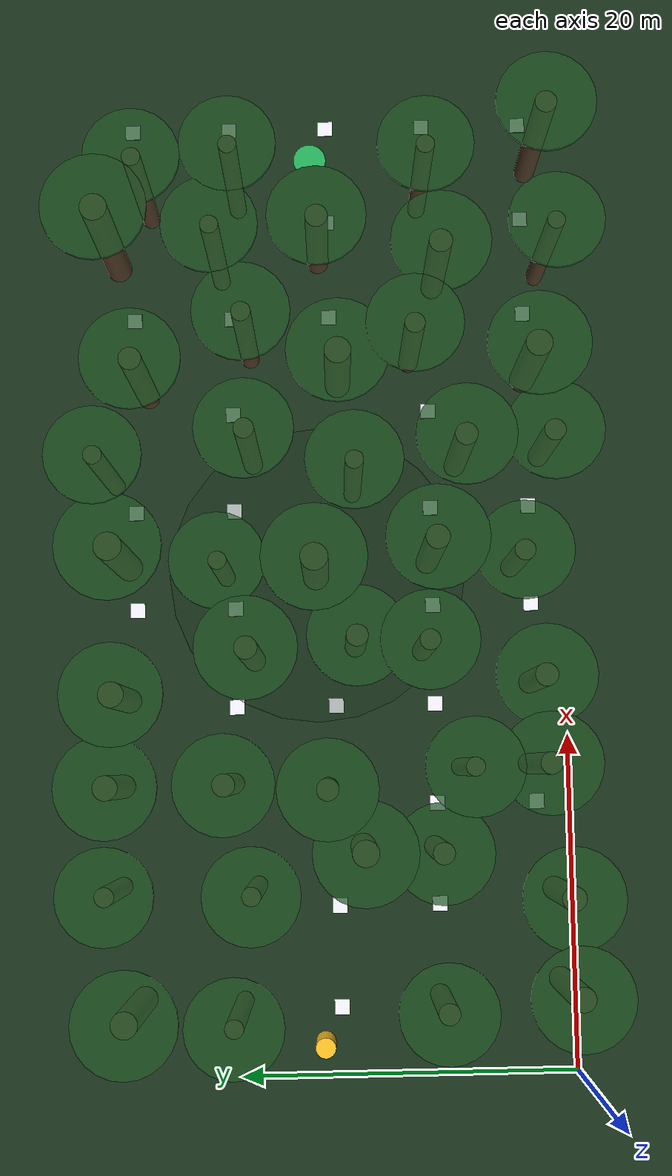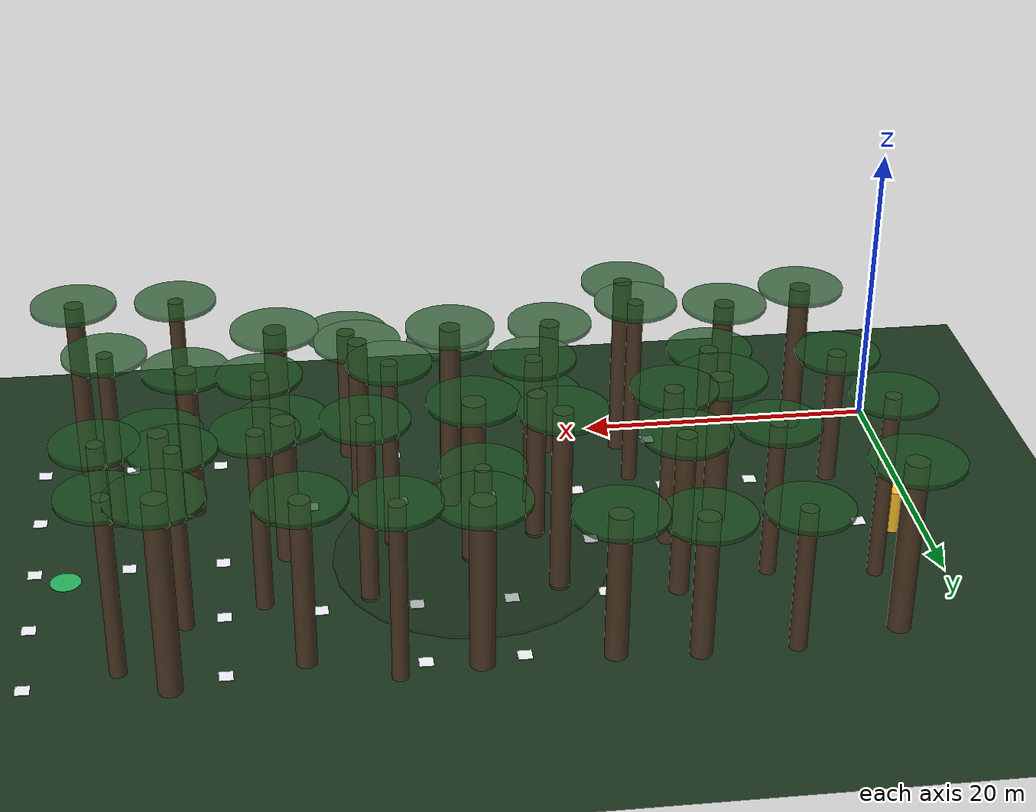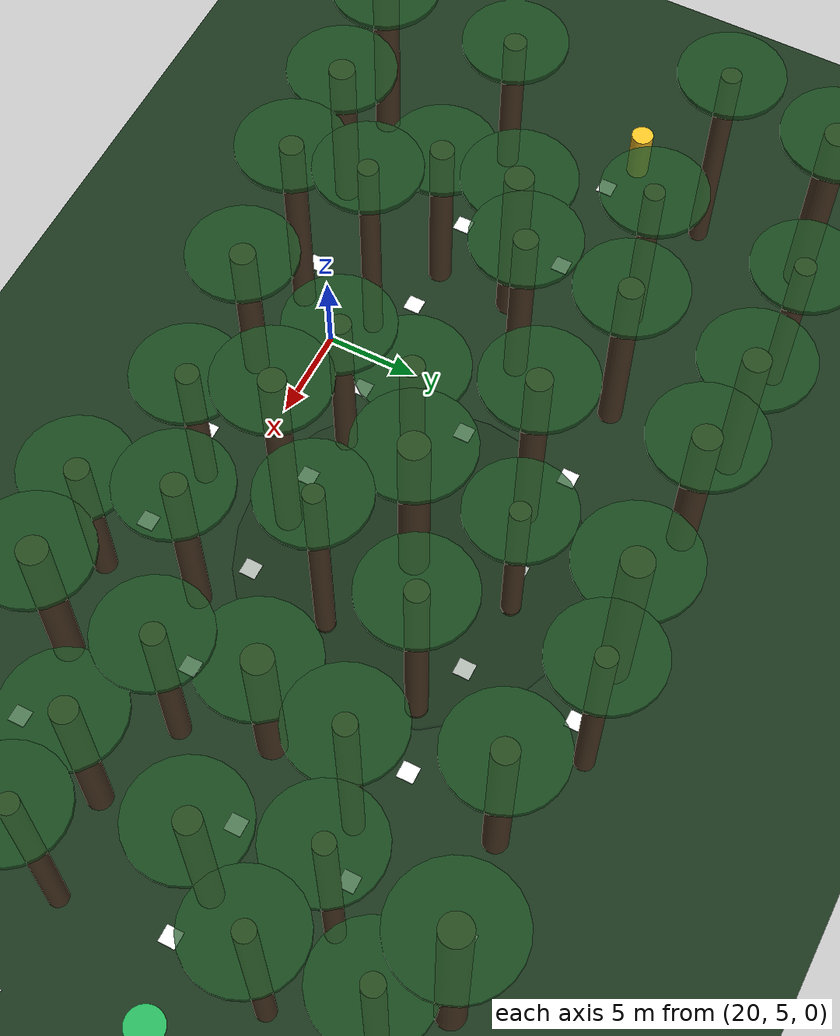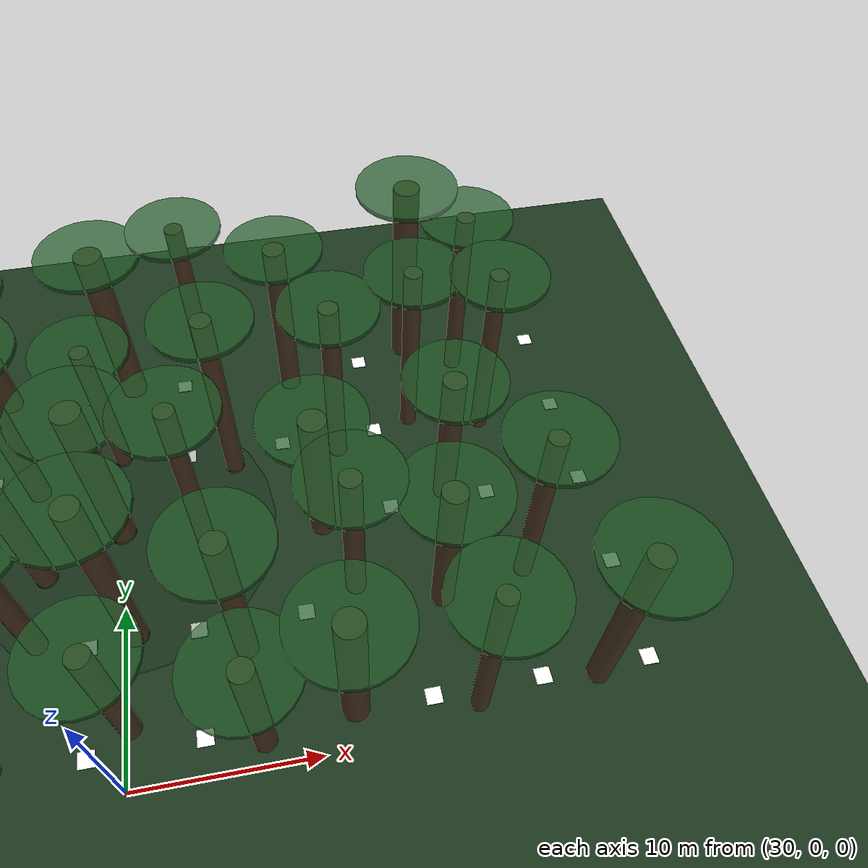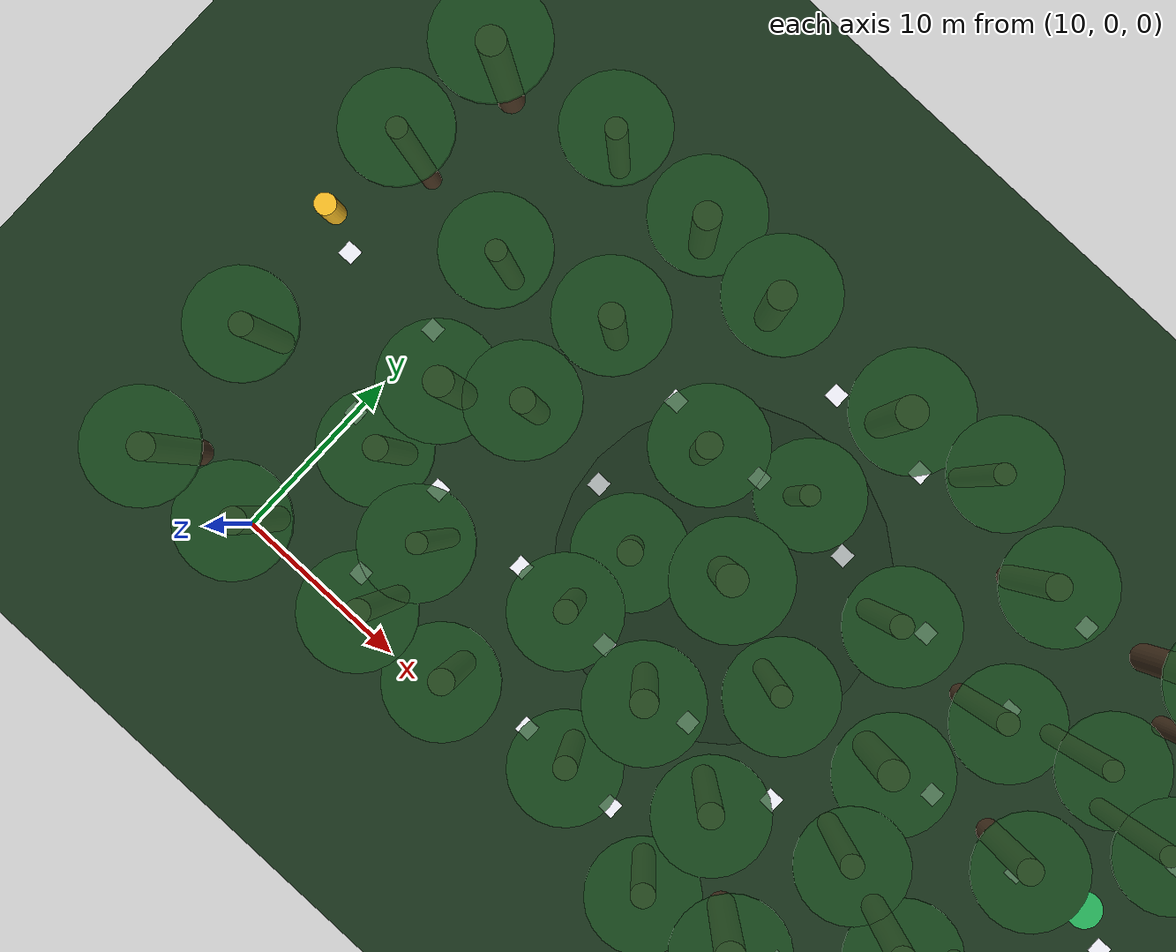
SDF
<?xml version="1.0" ?>
<!-- GENERATED by tools/gen_maps.py -- do not edit by hand. -->
<sdf version="1.6">
  <world name="canopy">
    <gravity>0 0 -9.81</gravity>
    <scene><ambient>0.5 0.52 0.55 1</ambient><background>0.45 0.55 0.5 1</background><shadows>true</shadows>
      <fog><color>0.45 0.55 0.5 1</color><type>linear</type><start>16</start><end>90</end><density>0.035</density></fog></scene>
    <light name="sun" type="directional"><cast_shadows>true</cast_shadows><pose>0 0 40 0 0 0</pose>
      <diffuse>0.9 0.9 0.9 1</diffuse><specular>0.2 0.2 0.2 1</specular><direction>-0.4 0.3 -0.9</direction></light>
    <model name="ground"><static>true</static><link name="link">
      <collision name="c"><geometry><plane><normal>0 0 1</normal><size>400 400</size></plane></geometry></collision>
      <visual name="v"><geometry><plane><normal>0 0 1</normal><size>400 400</size></plane></geometry>
      <material><ambient>0.1 0.2 0.11</ambient><diffuse>0.1 0.2 0.11</diffuse></material></visual></link></model>
    <model name="gps_black"><static>true</static><pose>30.000 15.000 0.03 0 0 0</pose><link name="l"><visual name="v"><geometry><cylinder><radius>9.0</radius><length>0.3</length></cylinder></geometry><material><ambient>0.1 0.18 0.1 0.3</ambient><diffuse>0.1 0.18 0.1 0.3</diffuse></material></visual></link></model>
    <model name="trunk0"><static>true</static><pose>5.436 0.883 5.477 0 0 0</pose><link name="l"><collision name="c"><geometry><cylinder><radius>0.6952803419119562</radius><length>10.954439688138283</length></cylinder></geometry></collision><visual name="v"><geometry><cylinder><radius>0.6952803419119562</radius><length>10.954439688138283</length></cylinder></geometry><material><ambient>0.3 0.22 0.14 1</ambient><diffuse>0.3 0.22 0.14 1</diffuse></material></visual></link></model>
    <model name="canopy0"><static>true</static><pose>5.436 0.883 10.95 0 0 0</pose><link name="l"><visual name="v"><geometry><cylinder><radius>2.895280341911956</radius><length>0.3</length></cylinder></geometry><material><ambient>0.13 0.34 0.15 0.75</ambient><diffuse>0.13 0.34 0.15 0.75</diffuse></material></visual></link></model>
    <model name="trunk1"><static>true</static><pose>4.632 8.115 4.801 0 0 0</pose><link name="l"><collision name="c"><geometry><cylinder><radius>0.6097066750737756</radius><length>9.602003546664584</length></cylinder></geometry></collision><visual name="v"><geometry><cylinder><radius>0.6097066750737756</radius><length>9.602003546664584</length></cylinder></geometry><material><ambient>0.3 0.22 0.14 1</ambient><diffuse>0.3 0.22 0.14 1</diffuse></material></visual></link></model>
    <model name="canopy1"><static>true</static><pose>4.632 8.115 9.60 0 0 0</pose><link name="l"><visual name="v"><geometry><cylinder><radius>2.809706675073776</radius><length>0.3</length></cylinder></geometry><material><ambient>0.13 0.34 0.15 0.75</ambient><diffuse>0.13 0.34 0.15 0.75</diffuse></material></visual></link></model>
    <model name="trunk2"><static>true</static><pose>4.520 19.788 6.499 0 0 0</pose><link name="l"><collision name="c"><geometry><cylinder><radius>0.5209566270723857</radius><length>12.997329509495279</length></cylinder></geometry></collision><visual name="v"><geometry><cylinder><radius>0.5209566270723857</radius><length>12.997329509495279</length></cylinder></geometry><material><ambient>0.3 0.22 0.14 1</ambient><diffuse>0.3 0.22 0.14 1</diffuse></material></visual></link></model>
    <model name="canopy2"><static>true</static><pose>4.520 19.788 13.00 0 0 0</pose><link name="l"><visual name="v"><geometry><cylinder><radius>2.7209566270723857</radius><length>0.3</length></cylinder></geometry><material><ambient>0.13 0.34 0.15 0.75</ambient><diffuse>0.13 0.34 0.15 0.75</diffuse></material></visual></link></model>
    <model name="trunk3"><static>true</static><pose>4.690 25.758 5.978 0 0 0</pose><link name="l"><collision name="c"><geometry><cylinder><radius>0.7480556374016114</radius><length>11.956275951153915</length></cylinder></geometry></collision><visual name="v"><geometry><cylinder><radius>0.7480556374016114</radius><length>11.956275951153915</length></cylinder></geometry><material><ambient>0.3 0.22 0.14 1</ambient><diffuse>0.3 0.22 0.14 1</diffuse></material></visual></link></model>
    <model name="canopy3"><static>true</static><pose>4.690 25.758 11.96 0 0 0</pose><link name="l"><visual name="v"><geometry><cylinder><radius>2.9480556374016116</radius><length>0.3</length></cylinder></geometry><material><ambient>0.13 0.34 0.15 0.75</ambient><diffuse>0.13 0.34 0.15 0.75</diffuse></material></visual></link></model>
    <model name="trunk4"><static>true</static><pose>10.796 1.114 5.047 0 0 0</pose><link name="l"><collision name="c"><geometry><cylinder><radius>0.6882299667216768</radius><length>10.094201941323565</length></cylinder></geometry></collision><visual name="v"><geometry><cylinder><radius>0.6882299667216768</radius><length>10.094201941323565</length></cylinder></geometry><material><ambient>0.3 0.22 0.14 1</ambient><diffuse>0.3 0.22 0.14 1</diffuse></material></visual></link></model>
    <model name="canopy4"><static>true</static><pose>10.796 1.114 10.09 0 0 0</pose><link name="l"><visual name="v"><geometry><cylinder><radius>2.888229966721677</radius><length>0.3</length></cylinder></geometry><material><ambient>0.13 0.34 0.15 0.75</ambient><diffuse>0.13 0.34 0.15 0.75</diffuse></material></visual></link></model>
    <model name="trunk5"><static>true</static><pose>13.433 8.247 5.255 0 0 0</pose><link name="l"><collision name="c"><geometry><cylinder><radius>0.619004142395234</radius><length>10.509031026228309</length></cylinder></geometry></collision><visual name="v"><geometry><cylinder><radius>0.619004142395234</radius><length>10.509031026228309</length></cylinder></geometry><material><ambient>0.3 0.22 0.14 1</ambient><diffuse>0.3 0.22 0.14 1</diffuse></material></visual></link></model>
    <model name="canopy5"><static>true</static><pose>13.433 8.247 10.51 0 0 0</pose><link name="l"><visual name="v"><geometry><cylinder><radius>2.8190041423952343</radius><length>0.3</length></cylinder></geometry><material><ambient>0.13 0.34 0.15 0.75</ambient><diffuse>0.13 0.34 0.15 0.75</diffuse></material></visual></link></model>
    <model name="trunk6"><static>true</static><pose>13.524 12.549 5.445 0 0 0</pose><link name="l"><collision name="c"><geometry><cylinder><radius>0.7575405377146038</radius><length>10.889558184214806</length></cylinder></geometry></collision><visual name="v"><geometry><cylinder><radius>0.7575405377146038</radius><length>10.889558184214806</length></cylinder></geometry><material><ambient>0.3 0.22 0.14 1</ambient><diffuse>0.3 0.22 0.14 1</diffuse></material></visual></link></model>
    <model name="canopy6"><static>true</static><pose>13.524 12.549 10.89 0 0 0</pose><link name="l"><visual name="v"><geometry><cylinder><radius>2.9575405377146042</radius><length>0.3</length></cylinder></geometry><material><ambient>0.13 0.34 0.15 0.75</ambient><diffuse>0.13 0.34 0.15 0.75</diffuse></material></visual></link></model>
    <model name="trunk7"><static>true</static><pose>11.327 18.862 5.478 0 0 0</pose><link name="l"><collision name="c"><geometry><cylinder><radius>0.5353376714235105</radius><length>10.95665375811313</length></cylinder></geometry></collision><visual name="v"><geometry><cylinder><radius>0.5353376714235105</radius><length>10.95665375811313</length></cylinder></geometry><material><ambient>0.3 0.22 0.14 1</ambient><diffuse>0.3 0.22 0.14 1</diffuse></material></visual></link></model>
    <model name="canopy7"><static>true</static><pose>11.327 18.862 10.96 0 0 0</pose><link name="l"><visual name="v"><geometry><cylinder><radius>2.735337671423511</radius><length>0.3</length></cylinder></geometry><material><ambient>0.13 0.34 0.15 0.75</ambient><diffuse>0.13 0.34 0.15 0.75</diffuse></material></visual></link></model>
    <model name="trunk8"><static>true</static><pose>11.387 27.012 4.996 0 0 0</pose><link name="l"><collision name="c"><geometry><cylinder><radius>0.5542179139771812</radius><length>9.99136892304878</length></cylinder></geometry></collision><visual name="v"><geometry><cylinder><radius>0.5542179139771812</radius><length>9.99136892304878</length></cylinder></geometry><material><ambient>0.3 0.22 0.14 1</ambient><diffuse>0.3 0.22 0.14 1</diffuse></material></visual></link></model>
    <model name="canopy8"><static>true</static><pose>11.387 27.012 9.99 0 0 0</pose><link name="l"><visual name="v"><geometry><cylinder><radius>2.7542179139771816</radius><length>0.3</length></cylinder></geometry><material><ambient>0.13 0.34 0.15 0.75</ambient><diffuse>0.13 0.34 0.15 0.75</diffuse></material></visual></link></model>
    <model name="trunk9"><static>true</static><pose>18.261 2.445 6.448 0 0 0</pose><link name="l"><collision name="c"><geometry><cylinder><radius>0.6117192628177194</radius><length>12.89574770593846</length></cylinder></geometry></collision><visual name="v"><geometry><cylinder><radius>0.6117192628177194</radius><length>12.89574770593846</length></cylinder></geometry><material><ambient>0.3 0.22 0.14 1</ambient><diffuse>0.3 0.22 0.14 1</diffuse></material></visual></link></model>
    <model name="canopy9"><static>true</static><pose>18.261 2.445 12.90 0 0 0</pose><link name="l"><visual name="v"><geometry><cylinder><radius>2.8117192628177197</radius><length>0.3</length></cylinder></geometry><material><ambient>0.13 0.34 0.15 0.75</ambient><diffuse>0.13 0.34 0.15 0.75</diffuse></material></visual></link></model>
    <model name="trunk10"><static>true</static><pose>18.153 6.601 6.736 0 0 0</pose><link name="l"><collision name="c"><geometry><cylinder><radius>0.5178803509898698</radius><length>13.472410886818857</length></cylinder></geometry></collision><visual name="v"><geometry><cylinder><radius>0.5178803509898698</radius><length>13.472410886818857</length></cylinder></geometry><material><ambient>0.3 0.22 0.14 1</ambient><diffuse>0.3 0.22 0.14 1</diffuse></material></visual></link></model>
    <model name="canopy10"><static>true</static><pose>18.153 6.601 13.47 0 0 0</pose><link name="l"><visual name="v"><geometry><cylinder><radius>2.71788035098987</radius><length>0.3</length></cylinder></geometry><material><ambient>0.13 0.34 0.15 0.75</ambient><diffuse>0.13 0.34 0.15 0.75</diffuse></material></visual></link></model>
    <model name="trunk11"><static>true</static><pose>17.059 14.577 5.682 0 0 0</pose><link name="l"><collision name="c"><geometry><cylinder><radius>0.6282776917008208</radius><length>11.363957836639734</length></cylinder></geometry></collision><visual name="v"><geometry><cylinder><radius>0.6282776917008208</radius><length>11.363957836639734</length></cylinder></geometry><material><ambient>0.3 0.22 0.14 1</ambient><diffuse>0.3 0.22 0.14 1</diffuse></material></visual></link></model>
    <model name="canopy11"><static>true</static><pose>17.059 14.577 11.36 0 0 0</pose><link name="l"><visual name="v"><geometry><cylinder><radius>2.828277691700821</radius><length>0.3</length></cylinder></geometry><material><ambient>0.13 0.34 0.15 0.75</ambient><diffuse>0.13 0.34 0.15 0.75</diffuse></material></visual></link></model>
    <model name="trunk12"><static>true</static><pose>17.405 20.274 5.718 0 0 0</pose><link name="l"><collision name="c"><geometry><cylinder><radius>0.6359553129112326</radius><length>11.435338625665079</length></cylinder></geometry></collision><visual name="v"><geometry><cylinder><radius>0.6359553129112326</radius><length>11.435338625665079</length></cylinder></geometry><material><ambient>0.3 0.22 0.14 1</ambient><diffuse>0.3 0.22 0.14 1</diffuse></material></visual></link></model>
    <model name="canopy12"><static>true</static><pose>17.405 20.274 11.44 0 0 0</pose><link name="l"><visual name="v"><geometry><cylinder><radius>2.8359553129112327</radius><length>0.3</length></cylinder></geometry><material><ambient>0.13 0.34 0.15 0.75</ambient><diffuse>0.13 0.34 0.15 0.75</diffuse></material></visual></link></model>
    <model name="trunk13"><static>true</static><pose>17.359 26.942 4.922 0 0 0</pose><link name="l"><collision name="c"><geometry><cylinder><radius>0.7096983301188714</radius><length>9.843538646224662</length></cylinder></geometry></collision><visual name="v"><geometry><cylinder><radius>0.7096983301188714</radius><length>9.843538646224662</length></cylinder></geometry><material><ambient>0.3 0.22 0.14 1</ambient><diffuse>0.3 0.22 0.14 1</diffuse></material></visual></link></model>
    <model name="canopy13"><static>true</static><pose>17.359 26.942 9.84 0 0 0</pose><link name="l"><visual name="v"><geometry><cylinder><radius>2.9096983301188715</radius><length>0.3</length></cylinder></geometry><material><ambient>0.13 0.34 0.15 0.75</ambient><diffuse>0.13 0.34 0.15 0.75</diffuse></material></visual></link></model>
    <model name="trunk14"><static>true</static><pose>23.181 2.238 4.954 0 0 0</pose><link name="l"><collision name="c"><geometry><cylinder><radius>0.6575589511434354</radius><length>9.908750466992673</length></cylinder></geometry></collision><visual name="v"><geometry><cylinder><radius>0.6575589511434354</radius><length>9.908750466992673</length></cylinder></geometry><material><ambient>0.3 0.22 0.14 1</ambient><diffuse>0.3 0.22 0.14 1</diffuse></material></visual></link></model>
    <model name="canopy14"><static>true</static><pose>23.181 2.238 9.91 0 0 0</pose><link name="l"><visual name="v"><geometry><cylinder><radius>2.8575589511434356</radius><length>0.3</length></cylinder></geometry><material><ambient>0.13 0.34 0.15 0.75</ambient><diffuse>0.13 0.34 0.15 0.75</diffuse></material></visual></link></model>
    <model name="trunk15"><static>true</static><pose>25.200 8.734 5.435 0 0 0</pose><link name="l"><collision name="c"><geometry><cylinder><radius>0.586381329467056</radius><length>10.870543352972007</length></cylinder></geometry></collision><visual name="v"><geometry><cylinder><radius>0.586381329467056</radius><length>10.870543352972007</length></cylinder></geometry><material><ambient>0.3 0.22 0.14 1</ambient><diffuse>0.3 0.22 0.14 1</diffuse></material></visual></link></model>
    <model name="canopy15"><static>true</static><pose>25.200 8.734 10.87 0 0 0</pose><link name="l"><visual name="v"><geometry><cylinder><radius>2.7863813294670563</radius><length>0.3</length></cylinder></geometry><material><ambient>0.13 0.34 0.15 0.75</ambient><diffuse>0.13 0.34 0.15 0.75</diffuse></material></visual></link></model>
    <model name="trunk16"><static>true</static><pose>25.537 12.778 5.280 0 0 0</pose><link name="l"><collision name="c"><geometry><cylinder><radius>0.6254368465355682</radius><length>10.559027566868721</length></cylinder></geometry></collision><visual name="v"><geometry><cylinder><radius>0.6254368465355682</radius><length>10.559027566868721</length></cylinder></geometry><material><ambient>0.3 0.22 0.14 1</ambient><diffuse>0.3 0.22 0.14 1</diffuse></material></visual></link></model>
    <model name="canopy16"><static>true</static><pose>25.537 12.778 10.56 0 0 0</pose><link name="l"><visual name="v"><geometry><cylinder><radius>2.8254368465355686</radius><length>0.3</length></cylinder></geometry><material><ambient>0.13 0.34 0.15 0.75</ambient><diffuse>0.13 0.34 0.15 0.75</diffuse></material></visual></link></model>
    <model name="trunk17"><static>true</static><pose>24.823 18.886 6.408 0 0 0</pose><link name="l"><collision name="c"><geometry><cylinder><radius>0.6466889301427416</radius><length>12.815421512486243</length></cylinder></geometry></collision><visual name="v"><geometry><cylinder><radius>0.6466889301427416</radius><length>12.815421512486243</length></cylinder></geometry><material><ambient>0.3 0.22 0.14 1</ambient><diffuse>0.3 0.22 0.14 1</diffuse></material></visual></link></model>
    <model name="canopy17"><static>true</static><pose>24.823 18.886 12.82 0 0 0</pose><link name="l"><visual name="v"><geometry><cylinder><radius>2.846688930142742</radius><length>0.3</length></cylinder></geometry><material><ambient>0.13 0.34 0.15 0.75</ambient><diffuse>0.13 0.34 0.15 0.75</diffuse></material></visual></link></model>
    <model name="trunk18"><static>true</static><pose>22.525 26.538 5.073 0 0 0</pose><link name="l"><collision name="c"><geometry><cylinder><radius>0.729371259863844</radius><length>10.145754442105726</length></cylinder></geometry></collision><visual name="v"><geometry><cylinder><radius>0.729371259863844</radius><length>10.145754442105726</length></cylinder></geometry><material><ambient>0.3 0.22 0.14 1</ambient><diffuse>0.3 0.22 0.14 1</diffuse></material></visual></link></model>
    <model name="canopy18"><static>true</static><pose>22.525 26.538 10.15 0 0 0</pose><link name="l"><visual name="v"><geometry><cylinder><radius>2.929371259863844</radius><length>0.3</length></cylinder></geometry><material><ambient>0.13 0.34 0.15 0.75</ambient><diffuse>0.13 0.34 0.15 0.75</diffuse></material></visual></link></model>
    <model name="trunk19"><static>true</static><pose>30.234 3.202 4.796 0 0 0</pose><link name="l"><collision name="c"><geometry><cylinder><radius>0.594124253854429</radius><length>9.592382884180992</length></cylinder></geometry></collision><visual name="v"><geometry><cylinder><radius>0.594124253854429</radius><length>9.592382884180992</length></cylinder></geometry><material><ambient>0.3 0.22 0.14 1</ambient><diffuse>0.3 0.22 0.14 1</diffuse></material></visual></link></model>
    <model name="canopy19"><static>true</static><pose>30.234 3.202 9.59 0 0 0</pose><link name="l"><visual name="v"><geometry><cylinder><radius>2.794124253854429</radius><length>0.3</length></cylinder></geometry><material><ambient>0.13 0.34 0.15 0.75</ambient><diffuse>0.13 0.34 0.15 0.75</diffuse></material></visual></link></model>
    <model name="trunk20"><static>true</static><pose>30.625 8.302 6.652 0 0 0</pose><link name="l"><collision name="c"><geometry><cylinder><radius>0.6739685612847477</radius><length>13.303942291498808</length></cylinder></geometry></collision><visual name="v"><geometry><cylinder><radius>0.6739685612847477</radius><length>13.303942291498808</length></cylinder></geometry><material><ambient>0.3 0.22 0.14 1</ambient><diffuse>0.3 0.22 0.14 1</diffuse></material></visual></link></model>
    <model name="canopy20"><static>true</static><pose>30.625 8.302 13.30 0 0 0</pose><link name="l"><visual name="v"><geometry><cylinder><radius>2.873968561284748</radius><length>0.3</length></cylinder></geometry><material><ambient>0.13 0.34 0.15 0.75</ambient><diffuse>0.13 0.34 0.15 0.75</diffuse></material></visual></link></model>
    <model name="trunk21"><static>true</static><pose>29.860 15.088 5.807 0 0 0</pose><link name="l"><collision name="c"><geometry><cylinder><radius>0.7834043285323813</radius><length>11.613029580168499</length></cylinder></geometry></collision><visual name="v"><geometry><cylinder><radius>0.7834043285323813</radius><length>11.613029580168499</length></cylinder></geometry><material><ambient>0.3 0.22 0.14 1</ambient><diffuse>0.3 0.22 0.14 1</diffuse></material></visual></link></model>
    <model name="canopy21"><static>true</static><pose>29.860 15.088 11.61 0 0 0</pose><link name="l"><visual name="v"><geometry><cylinder><radius>2.9834043285323815</radius><length>0.3</length></cylinder></geometry><material><ambient>0.13 0.34 0.15 0.75</ambient><diffuse>0.13 0.34 0.15 0.75</diffuse></material></visual></link></model>
    <model name="trunk22"><static>true</static><pose>29.917 20.525 5.043 0 0 0</pose><link name="l"><collision name="c"><geometry><cylinder><radius>0.5182008282791659</radius><length>10.086410155596363</length></cylinder></geometry></collision><visual name="v"><geometry><cylinder><radius>0.5182008282791659</radius><length>10.086410155596363</length></cylinder></geometry><material><ambient>0.3 0.22 0.14 1</ambient><diffuse>0.3 0.22 0.14 1</diffuse></material></visual></link></model>
    <model name="canopy22"><static>true</static><pose>29.917 20.525 10.09 0 0 0</pose><link name="l"><visual name="v"><geometry><cylinder><radius>2.718200828279166</radius><length>0.3</length></cylinder></geometry><material><ambient>0.13 0.34 0.15 0.75</ambient><diffuse>0.13 0.34 0.15 0.75</diffuse></material></visual></link></model>
    <model name="trunk23"><static>true</static><pose>30.645 26.471 5.836 0 0 0</pose><link name="l"><collision name="c"><geometry><cylinder><radius>0.7979287818399903</radius><length>11.672689703528457</length></cylinder></geometry></collision><visual name="v"><geometry><cylinder><radius>0.7979287818399903</radius><length>11.672689703528457</length></cylinder></geometry><material><ambient>0.3 0.22 0.14 1</ambient><diffuse>0.3 0.22 0.14 1</diffuse></material></visual></link></model>
    <model name="canopy23"><static>true</static><pose>30.645 26.471 11.67 0 0 0</pose><link name="l"><visual name="v"><geometry><cylinder><radius>2.9979287818399905</radius><length>0.3</length></cylinder></geometry><material><ambient>0.13 0.34 0.15 0.75</ambient><diffuse>0.13 0.34 0.15 0.75</diffuse></material></visual></link></model>
    <model name="trunk24"><static>true</static><pose>37.030 1.311 4.804 0 0 0</pose><link name="l"><collision name="c"><geometry><cylinder><radius>0.6157374327340133</radius><length>9.608169965688674</length></cylinder></geometry></collision><visual name="v"><geometry><cylinder><radius>0.6157374327340133</radius><length>9.608169965688674</length></cylinder></geometry><material><ambient>0.3 0.22 0.14 1</ambient><diffuse>0.3 0.22 0.14 1</diffuse></material></visual></link></model>
    <model name="canopy24"><static>true</static><pose>37.030 1.311 9.61 0 0 0</pose><link name="l"><visual name="v"><geometry><cylinder><radius>2.8157374327340134</radius><length>0.3</length></cylinder></geometry><material><ambient>0.13 0.34 0.15 0.75</ambient><diffuse>0.13 0.34 0.15 0.75</diffuse></material></visual></link></model>
    <model name="trunk25"><static>true</static><pose>36.540 6.472 5.806 0 0 0</pose><link name="l"><collision name="c"><geometry><cylinder><radius>0.6385085858899298</radius><length>11.612437763753226</length></cylinder></geometry></collision><visual name="v"><geometry><cylinder><radius>0.6385085858899298</radius><length>11.612437763753226</length></cylinder></geometry><material><ambient>0.3 0.22 0.14 1</ambient><diffuse>0.3 0.22 0.14 1</diffuse></material></visual></link></model>
    <model name="canopy25"><static>true</static><pose>36.540 6.472 11.61 0 0 0</pose><link name="l"><visual name="v"><geometry><cylinder><radius>2.83850858588993</radius><length>0.3</length></cylinder></geometry><material><ambient>0.13 0.34 0.15 0.75</ambient><diffuse>0.13 0.34 0.15 0.75</diffuse></material></visual></link></model>
    <model name="trunk26"><static>true</static><pose>34.938 12.775 6.707 0 0 0</pose><link name="l"><collision name="c"><geometry><cylinder><radius>0.5176863257993931</radius><length>13.41400497087589</length></cylinder></geometry></collision><visual name="v"><geometry><cylinder><radius>0.5176863257993931</radius><length>13.41400497087589</length></cylinder></geometry><material><ambient>0.3 0.22 0.14 1</ambient><diffuse>0.3 0.22 0.14 1</diffuse></material></visual></link></model>
    <model name="canopy26"><static>true</static><pose>34.938 12.775 13.41 0 0 0</pose><link name="l"><visual name="v"><geometry><cylinder><radius>2.7176863257993933</radius><length>0.3</length></cylinder></geometry><material><ambient>0.13 0.34 0.15 0.75</ambient><diffuse>0.13 0.34 0.15 0.75</diffuse></material></visual></link></model>
    <model name="trunk27"><static>true</static><pose>36.858 18.814 6.477 0 0 0</pose><link name="l"><collision name="c"><geometry><cylinder><radius>0.5742844501090743</radius><length>12.953300121158676</length></cylinder></geometry></collision><visual name="v"><geometry><cylinder><radius>0.5742844501090743</radius><length>12.953300121158676</length></cylinder></geometry><material><ambient>0.3 0.22 0.14 1</ambient><diffuse>0.3 0.22 0.14 1</diffuse></material></visual></link></model>
    <model name="canopy27"><static>true</static><pose>36.858 18.814 12.95 0 0 0</pose><link name="l"><visual name="v"><geometry><cylinder><radius>2.774284450109074</radius><length>0.3</length></cylinder></geometry><material><ambient>0.13 0.34 0.15 0.75</ambient><diffuse>0.13 0.34 0.15 0.75</diffuse></material></visual></link></model>
    <model name="trunk28"><static>true</static><pose>35.651 27.189 6.142 0 0 0</pose><link name="l"><collision name="c"><geometry><cylinder><radius>0.5241743903600415</radius><length>12.284787143631208</length></cylinder></geometry></collision><visual name="v"><geometry><cylinder><radius>0.5241743903600415</radius><length>12.284787143631208</length></cylinder></geometry><material><ambient>0.3 0.22 0.14 1</ambient><diffuse>0.3 0.22 0.14 1</diffuse></material></visual></link></model>
    <model name="canopy28"><static>true</static><pose>35.651 27.189 12.28 0 0 0</pose><link name="l"><visual name="v"><geometry><cylinder><radius>2.7241743903600417</radius><length>0.3</length></cylinder></geometry><material><ambient>0.13 0.34 0.15 0.75</ambient><diffuse>0.13 0.34 0.15 0.75</diffuse></material></visual></link></model>
    <model name="trunk29"><static>true</static><pose>41.837 2.158 5.272 0 0 0</pose><link name="l"><collision name="c"><geometry><cylinder><radius>0.7650151479324538</radius><length>10.544460788917448</length></cylinder></geometry></collision><visual name="v"><geometry><cylinder><radius>0.7650151479324538</radius><length>10.544460788917448</length></cylinder></geometry><material><ambient>0.3 0.22 0.14 1</ambient><diffuse>0.3 0.22 0.14 1</diffuse></material></visual></link></model>
    <model name="canopy29"><static>true</static><pose>41.837 2.158 10.54 0 0 0</pose><link name="l"><visual name="v"><geometry><cylinder><radius>2.965015147932454</radius><length>0.3</length></cylinder></geometry><material><ambient>0.13 0.34 0.15 0.75</ambient><diffuse>0.13 0.34 0.15 0.75</diffuse></material></visual></link></model>
    <model name="trunk30"><static>true</static><pose>43.022 9.165 5.483 0 0 0</pose><link name="l"><collision name="c"><geometry><cylinder><radius>0.5835263193541691</radius><length>10.966799167044716</length></cylinder></geometry></collision><visual name="v"><geometry><cylinder><radius>0.5835263193541691</radius><length>10.966799167044716</length></cylinder></geometry><material><ambient>0.3 0.22 0.14 1</ambient><diffuse>0.3 0.22 0.14 1</diffuse></material></visual></link></model>
    <model name="canopy30"><static>true</static><pose>43.022 9.165 10.97 0 0 0</pose><link name="l"><visual name="v"><geometry><cylinder><radius>2.783526319354169</radius><length>0.3</length></cylinder></geometry><material><ambient>0.13 0.34 0.15 0.75</ambient><diffuse>0.13 0.34 0.15 0.75</diffuse></material></visual></link></model>
    <model name="trunk31"><static>true</static><pose>41.729 13.548 5.084 0 0 0</pose><link name="l"><collision name="c"><geometry><cylinder><radius>0.7652578481594652</radius><length>10.168168138137345</length></cylinder></geometry></collision><visual name="v"><geometry><cylinder><radius>0.7652578481594652</radius><length>10.168168138137345</length></cylinder></geometry><material><ambient>0.3 0.22 0.14 1</ambient><diffuse>0.3 0.22 0.14 1</diffuse></material></visual></link></model>
    <model name="canopy31"><static>true</static><pose>41.729 13.548 10.17 0 0 0</pose><link name="l"><visual name="v"><geometry><cylinder><radius>2.9652578481594656</radius><length>0.3</length></cylinder></geometry><material><ambient>0.13 0.34 0.15 0.75</ambient><diffuse>0.13 0.34 0.15 0.75</diffuse></material></visual></link></model>
    <model name="trunk32"><static>true</static><pose>43.465 18.883 6.294 0 0 0</pose><link name="l"><collision name="c"><geometry><cylinder><radius>0.5528653185471111</radius><length>12.587751633608125</length></cylinder></geometry></collision><visual name="v"><geometry><cylinder><radius>0.5528653185471111</radius><length>12.587751633608125</length></cylinder></geometry><material><ambient>0.3 0.22 0.14 1</ambient><diffuse>0.3 0.22 0.14 1</diffuse></material></visual></link></model>
    <model name="canopy32"><static>true</static><pose>43.465 18.883 12.59 0 0 0</pose><link name="l"><visual name="v"><geometry><cylinder><radius>2.7528653185471113</radius><length>0.3</length></cylinder></geometry><material><ambient>0.13 0.34 0.15 0.75</ambient><diffuse>0.13 0.34 0.15 0.75</diffuse></material></visual></link></model>
    <model name="trunk33"><static>true</static><pose>41.142 25.147 5.815 0 0 0</pose><link name="l"><collision name="c"><geometry><cylinder><radius>0.6454888191024071</radius><length>11.630369589971515</length></cylinder></geometry></collision><visual name="v"><geometry><cylinder><radius>0.6454888191024071</radius><length>11.630369589971515</length></cylinder></geometry><material><ambient>0.3 0.22 0.14 1</ambient><diffuse>0.3 0.22 0.14 1</diffuse></material></visual></link></model>
    <model name="canopy33"><static>true</static><pose>41.142 25.147 11.63 0 0 0</pose><link name="l"><visual name="v"><geometry><cylinder><radius>2.8454888191024073</radius><length>0.3</length></cylinder></geometry><material><ambient>0.13 0.34 0.15 0.75</ambient><diffuse>0.13 0.34 0.15 0.75</diffuse></material></visual></link></model>
    <model name="trunk34"><static>true</static><pose>48.285 1.241 6.308 0 0 0</pose><link name="l"><collision name="c"><geometry><cylinder><radius>0.5012280810155192</radius><length>12.616219565352708</length></cylinder></geometry></collision><visual name="v"><geometry><cylinder><radius>0.5012280810155192</radius><length>12.616219565352708</length></cylinder></geometry><material><ambient>0.3 0.22 0.14 1</ambient><diffuse>0.3 0.22 0.14 1</diffuse></material></visual></link></model>
    <model name="canopy34"><static>true</static><pose>48.285 1.241 12.62 0 0 0</pose><link name="l"><visual name="v"><geometry><cylinder><radius>2.701228081015519</radius><length>0.3</length></cylinder></geometry><material><ambient>0.13 0.34 0.15 0.75</ambient><diffuse>0.13 0.34 0.15 0.75</diffuse></material></visual></link></model>
    <model name="trunk35"><static>true</static><pose>47.741 7.582 5.409 0 0 0</pose><link name="l"><collision name="c"><geometry><cylinder><radius>0.6699023671119176</radius><length>10.81865998019105</length></cylinder></geometry></collision><visual name="v"><geometry><cylinder><radius>0.6699023671119176</radius><length>10.81865998019105</length></cylinder></geometry><material><ambient>0.3 0.22 0.14 1</ambient><diffuse>0.3 0.22 0.14 1</diffuse></material></visual></link></model>
    <model name="canopy35"><static>true</static><pose>47.741 7.582 10.82 0 0 0</pose><link name="l"><visual name="v"><geometry><cylinder><radius>2.869902367111918</radius><length>0.3</length></cylinder></geometry><material><ambient>0.13 0.34 0.15 0.75</ambient><diffuse>0.13 0.34 0.15 0.75</diffuse></material></visual></link></model>
    <model name="trunk36"><static>true</static><pose>49.450 14.610 5.196 0 0 0</pose><link name="l"><collision name="c"><geometry><cylinder><radius>0.6546474299212335</radius><length>10.39216669241274</length></cylinder></geometry></collision><visual name="v"><geometry><cylinder><radius>0.6546474299212335</radius><length>10.39216669241274</length></cylinder></geometry><material><ambient>0.3 0.22 0.14 1</ambient><diffuse>0.3 0.22 0.14 1</diffuse></material></visual></link></model>
    <model name="canopy36"><static>true</static><pose>49.450 14.610 10.39 0 0 0</pose><link name="l"><visual name="v"><geometry><cylinder><radius>2.8546474299212337</radius><length>0.3</length></cylinder></geometry><material><ambient>0.13 0.34 0.15 0.75</ambient><diffuse>0.13 0.34 0.15 0.75</diffuse></material></visual></link></model>
    <model name="trunk37"><static>true</static><pose>48.376 20.564 6.373 0 0 0</pose><link name="l"><collision name="c"><geometry><cylinder><radius>0.5161978679671371</radius><length>12.746044987094379</length></cylinder></geometry></collision><visual name="v"><geometry><cylinder><radius>0.5161978679671371</radius><length>12.746044987094379</length></cylinder></geometry><material><ambient>0.3 0.22 0.14 1</ambient><diffuse>0.3 0.22 0.14 1</diffuse></material></visual></link></model>
    <model name="canopy37"><static>true</static><pose>48.376 20.564 12.75 0 0 0</pose><link name="l"><visual name="v"><geometry><cylinder><radius>2.7161978679671375</radius><length>0.3</length></cylinder></geometry><material><ambient>0.13 0.34 0.15 0.75</ambient><diffuse>0.13 0.34 0.15 0.75</diffuse></material></visual></link></model>
    <model name="trunk38"><static>true</static><pose>49.279 26.896 6.720 0 0 0</pose><link name="l"><collision name="c"><geometry><cylinder><radius>0.762353955240343</radius><length>13.439704202363563</length></cylinder></geometry></collision><visual name="v"><geometry><cylinder><radius>0.762353955240343</radius><length>13.439704202363563</length></cylinder></geometry><material><ambient>0.3 0.22 0.14 1</ambient><diffuse>0.3 0.22 0.14 1</diffuse></material></visual></link></model>
    <model name="canopy38"><static>true</static><pose>49.279 26.896 13.44 0 0 0</pose><link name="l"><visual name="v"><geometry><cylinder><radius>2.962353955240343</radius><length>0.3</length></cylinder></geometry><material><ambient>0.13 0.34 0.15 0.75</ambient><diffuse>0.13 0.34 0.15 0.75</diffuse></material></visual></link></model>
    <model name="trunk39"><static>true</static><pose>54.953 1.656 6.455 0 0 0</pose><link name="l"><collision name="c"><geometry><cylinder><radius>0.6196936496960819</radius><length>12.910515194986642</length></cylinder></geometry></collision><visual name="v"><geometry><cylinder><radius>0.6196936496960819</radius><length>12.910515194986642</length></cylinder></geometry><material><ambient>0.3 0.22 0.14 1</ambient><diffuse>0.3 0.22 0.14 1</diffuse></material></visual></link></model>
    <model name="canopy39"><static>true</static><pose>54.953 1.656 12.91 0 0 0</pose><link name="l"><visual name="v"><geometry><cylinder><radius>2.819693649696082</radius><length>0.3</length></cylinder></geometry><material><ambient>0.13 0.34 0.15 0.75</ambient><diffuse>0.13 0.34 0.15 0.75</diffuse></material></visual></link></model>
    <model name="trunk40"><static>true</static><pose>52.731 8.430 6.362 0 0 0</pose><link name="l"><collision name="c"><geometry><cylinder><radius>0.5186743464856063</radius><length>12.72431433914267</length></cylinder></geometry></collision><visual name="v"><geometry><cylinder><radius>0.5186743464856063</radius><length>12.72431433914267</length></cylinder></geometry><material><ambient>0.3 0.22 0.14 1</ambient><diffuse>0.3 0.22 0.14 1</diffuse></material></visual></link></model>
    <model name="canopy40"><static>true</static><pose>52.731 8.430 12.72 0 0 0</pose><link name="l"><visual name="v"><geometry><cylinder><radius>2.7186743464856065</radius><length>0.3</length></cylinder></geometry><material><ambient>0.13 0.34 0.15 0.75</ambient><diffuse>0.13 0.34 0.15 0.75</diffuse></material></visual></link></model>
    <model name="trunk41"><static>true</static><pose>52.919 19.488 6.387 0 0 0</pose><link name="l"><collision name="c"><geometry><cylinder><radius>0.5157726811670801</radius><length>12.773331773301493</length></cylinder></geometry></collision><visual name="v"><geometry><cylinder><radius>0.5157726811670801</radius><length>12.773331773301493</length></cylinder></geometry><material><ambient>0.3 0.22 0.14 1</ambient><diffuse>0.3 0.22 0.14 1</diffuse></material></visual></link></model>
    <model name="canopy41"><static>true</static><pose>52.919 19.488 12.77 0 0 0</pose><link name="l"><visual name="v"><geometry><cylinder><radius>2.7157726811670804</radius><length>0.3</length></cylinder></geometry><material><ambient>0.13 0.34 0.15 0.75</ambient><diffuse>0.13 0.34 0.15 0.75</diffuse></material></visual></link></model>
    <model name="trunk42"><static>true</static><pose>52.401 24.884 6.230 0 0 0</pose><link name="l"><collision name="c"><geometry><cylinder><radius>0.5304393104067789</radius><length>12.459492081502857</length></cylinder></geometry></collision><visual name="v"><geometry><cylinder><radius>0.5304393104067789</radius><length>12.459492081502857</length></cylinder></geometry><material><ambient>0.3 0.22 0.14 1</ambient><diffuse>0.3 0.22 0.14 1</diffuse></material></visual></link></model>
    <model name="canopy42"><static>true</static><pose>52.401 24.884 12.46 0 0 0</pose><link name="l"><visual name="v"><geometry><cylinder><radius>2.730439310406779</radius><length>0.3</length></cylinder></geometry><material><ambient>0.13 0.34 0.15 0.75</ambient><diffuse>0.13 0.34 0.15 0.75</diffuse></material></visual></link></model>
    <model name="marker0"><static>true</static><pose>4.000 14.000 0.03 0 0 0</pose><link name="l"><visual name="v"><geometry><box><size>0.9 0.9 0.05</size></box></geometry><material><ambient>0.95 0.95 0.98 1</ambient></material></visual></link></model>
    <model name="marker1"><static>true</static><pose>10.000 8.000 0.03 0 0 0</pose><link name="l"><visual name="v"><geometry><box><size>0.9 0.9 0.05</size></box></geometry><material><ambient>0.95 0.95 0.98 1</ambient></material></visual></link></model>
    <model name="marker2"><static>true</static><pose>10.000 14.000 0.03 0 0 0</pose><link name="l"><visual name="v"><geometry><box><size>0.9 0.9 0.05</size></box></geometry><material><ambient>0.95 0.95 0.98 1</ambient></material></visual></link></model>
    <model name="marker3"><static>true</static><pose>16.000 2.000 0.03 0 0 0</pose><link name="l"><visual name="v"><geometry><box><size>0.9 0.9 0.05</size></box></geometry><material><ambient>0.95 0.95 0.98 1</ambient></material></visual></link></model>
    <model name="marker4"><static>true</static><pose>16.000 8.000 0.03 0 0 0</pose><link name="l"><visual name="v"><geometry><box><size>0.9 0.9 0.05</size></box></geometry><material><ambient>0.95 0.95 0.98 1</ambient></material></visual></link></model>
    <model name="marker5"><static>true</static><pose>22.000 8.000 0.03 0 0 0</pose><link name="l"><visual name="v"><geometry><box><size>0.9 0.9 0.05</size></box></geometry><material><ambient>0.95 0.95 0.98 1</ambient></material></visual></link></model>
    <model name="marker6"><static>true</static><pose>22.000 14.000 0.03 0 0 0</pose><link name="l"><visual name="v"><geometry><box><size>0.9 0.9 0.05</size></box></geometry><material><ambient>0.95 0.95 0.98 1</ambient></material></visual></link></model>
    <model name="marker7"><static>true</static><pose>22.000 20.000 0.03 0 0 0</pose><link name="l"><visual name="v"><geometry><box><size>0.9 0.9 0.05</size></box></geometry><material><ambient>0.95 0.95 0.98 1</ambient></material></visual></link></model>
    <model name="marker8"><static>true</static><pose>28.000 2.000 0.03 0 0 0</pose><link name="l"><visual name="v"><geometry><box><size>0.9 0.9 0.05</size></box></geometry><material><ambient>0.95 0.95 0.98 1</ambient></material></visual></link></model>
    <model name="marker9"><static>true</static><pose>28.000 8.000 0.03 0 0 0</pose><link name="l"><visual name="v"><geometry><box><size>0.9 0.9 0.05</size></box></geometry><material><ambient>0.95 0.95 0.98 1</ambient></material></visual></link></model>
    <model name="marker10"><static>true</static><pose>28.000 20.000 0.03 0 0 0</pose><link name="l"><visual name="v"><geometry><box><size>0.9 0.9 0.05</size></box></geometry><material><ambient>0.95 0.95 0.98 1</ambient></material></visual></link></model>
    <model name="marker11"><static>true</static><pose>28.000 26.000 0.03 0 0 0</pose><link name="l"><visual name="v"><geometry><box><size>0.9 0.9 0.05</size></box></geometry><material><ambient>0.95 0.95 0.98 1</ambient></material></visual></link></model>
    <model name="marker12"><static>true</static><pose>34.000 2.000 0.03 0 0 0</pose><link name="l"><visual name="v"><geometry><box><size>0.9 0.9 0.05</size></box></geometry><material><ambient>0.95 0.95 0.98 1</ambient></material></visual></link></model>
    <model name="marker13"><static>true</static><pose>34.000 8.000 0.03 0 0 0</pose><link name="l"><visual name="v"><geometry><box><size>0.9 0.9 0.05</size></box></geometry><material><ambient>0.95 0.95 0.98 1</ambient></material></visual></link></model>
    <model name="marker14"><static>true</static><pose>34.000 20.000 0.03 0 0 0</pose><link name="l"><visual name="v"><geometry><box><size>0.9 0.9 0.05</size></box></geometry><material><ambient>0.95 0.95 0.98 1</ambient></material></visual></link></model>
    <model name="marker15"><static>true</static><pose>34.000 26.000 0.03 0 0 0</pose><link name="l"><visual name="v"><geometry><box><size>0.9 0.9 0.05</size></box></geometry><material><ambient>0.95 0.95 0.98 1</ambient></material></visual></link></model>
    <model name="marker16"><static>true</static><pose>40.000 8.000 0.03 0 0 0</pose><link name="l"><visual name="v"><geometry><box><size>0.9 0.9 0.05</size></box></geometry><material><ambient>0.95 0.95 0.98 1</ambient></material></visual></link></model>
    <model name="marker17"><static>true</static><pose>40.000 20.000 0.03 0 0 0</pose><link name="l"><visual name="v"><geometry><box><size>0.9 0.9 0.05</size></box></geometry><material><ambient>0.95 0.95 0.98 1</ambient></material></visual></link></model>
    <model name="marker18"><static>true</static><pose>46.000 2.000 0.03 0 0 0</pose><link name="l"><visual name="v"><geometry><box><size>0.9 0.9 0.05</size></box></geometry><material><ambient>0.95 0.95 0.98 1</ambient></material></visual></link></model>
    <model name="marker19"><static>true</static><pose>46.000 14.000 0.03 0 0 0</pose><link name="l"><visual name="v"><geometry><box><size>0.9 0.9 0.05</size></box></geometry><material><ambient>0.95 0.95 0.98 1</ambient></material></visual></link></model>
    <model name="marker20"><static>true</static><pose>46.000 20.000 0.03 0 0 0</pose><link name="l"><visual name="v"><geometry><box><size>0.9 0.9 0.05</size></box></geometry><material><ambient>0.95 0.95 0.98 1</ambient></material></visual></link></model>
    <model name="marker21"><static>true</static><pose>46.000 26.000 0.03 0 0 0</pose><link name="l"><visual name="v"><geometry><box><size>0.9 0.9 0.05</size></box></geometry><material><ambient>0.95 0.95 0.98 1</ambient></material></visual></link></model>
    <model name="marker22"><static>true</static><pose>52.000 2.000 0.03 0 0 0</pose><link name="l"><visual name="v"><geometry><box><size>0.9 0.9 0.05</size></box></geometry><material><ambient>0.95 0.95 0.98 1</ambient></material></visual></link></model>
    <model name="marker23"><static>true</static><pose>52.000 14.000 0.03 0 0 0</pose><link name="l"><visual name="v"><geometry><box><size>0.9 0.9 0.05</size></box></geometry><material><ambient>0.95 0.95 0.98 1</ambient></material></visual></link></model>
    <model name="marker24"><static>true</static><pose>58.000 2.000 0.03 0 0 0</pose><link name="l"><visual name="v"><geometry><box><size>0.9 0.9 0.05</size></box></geometry><material><ambient>0.95 0.95 0.98 1</ambient></material></visual></link></model>
    <model name="marker25"><static>true</static><pose>58.000 8.000 0.03 0 0 0</pose><link name="l"><visual name="v"><geometry><box><size>0.9 0.9 0.05</size></box></geometry><material><ambient>0.95 0.95 0.98 1</ambient></material></visual></link></model>
    <model name="marker26"><static>true</static><pose>58.000 14.000 0.03 0 0 0</pose><link name="l"><visual name="v"><geometry><box><size>0.9 0.9 0.05</size></box></geometry><material><ambient>0.95 0.95 0.98 1</ambient></material></visual></link></model>
    <model name="marker27"><static>true</static><pose>58.000 20.000 0.03 0 0 0</pose><link name="l"><visual name="v"><geometry><box><size>0.9 0.9 0.05</size></box></geometry><material><ambient>0.95 0.95 0.98 1</ambient></material></visual></link></model>
    <model name="marker28"><static>true</static><pose>58.000 26.000 0.03 0 0 0</pose><link name="l"><visual name="v"><geometry><box><size>0.9 0.9 0.05</size></box></geometry><material><ambient>0.95 0.95 0.98 1</ambient></material></visual></link></model>
    <model name="target_B"><static>true</static><pose>2.000 15.000 1.500 0 0 0</pose><link name="l"><collision name="c"><geometry><cylinder><radius>0.6</radius><length>3.0</length></cylinder></geometry></collision><visual name="v"><geometry><cylinder><radius>0.6</radius><length>3.0</length></cylinder></geometry><material><ambient>0.98 0.75 0.14 1</ambient><diffuse>0.98 0.75 0.14 1</diffuse></material></visual></link></model>
    <model name="start_pad"><static>true</static><pose>56.000 15.000 0.020 0 0 0</pose><link name="l"><collision name="c"><geometry><cylinder><radius>1.0</radius><length>0.04</length></cylinder></geometry></collision><visual name="v"><geometry><cylinder><radius>1.0</radius><length>0.04</length></cylinder></geometry><material><ambient>0.2 0.83 0.44 0.85</ambient><diffuse>0.2 0.83 0.44 0.85</diffuse></material></visual></link></model>
    <plugin name="gazebo_ros_state" filename="libgazebo_ros_state.so"><ros><namespace>/gazebo</namespace></ros><update_rate>0.0</update_rate></plugin>
    <physics name="ode" type="ode"><max_step_size>0.004</max_step_size><real_time_update_rate>250</real_time_update_rate></physics>
  </world>
</sdf>
